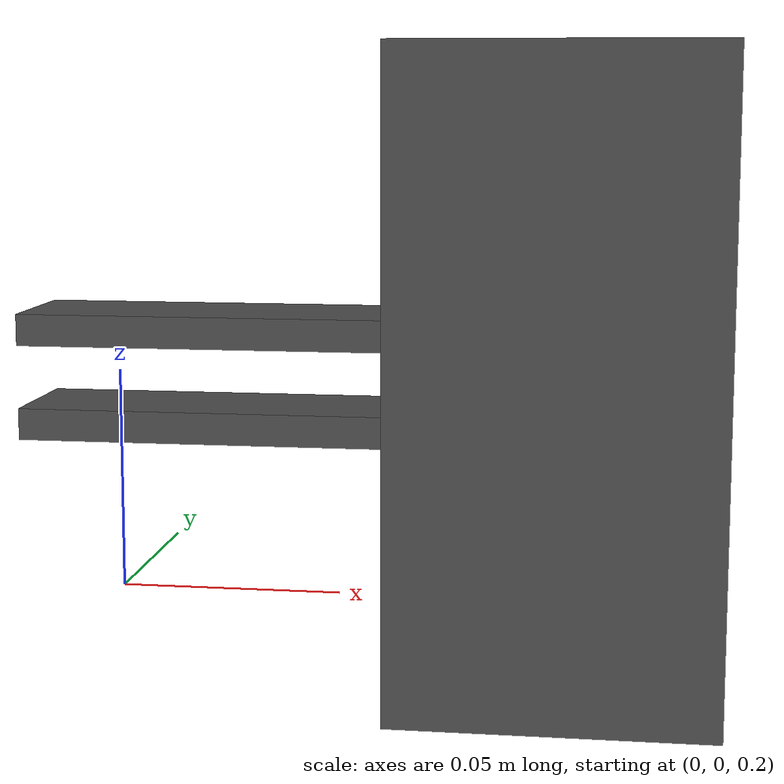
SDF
<?xml version="1.0"?>
<sdf version="1.7">
  <model name="simple_gripper">
    <pose>0.05 0.0 0.25 0 1.57 1.57</pose>
    <joint name="translate_joint" type="prismatic">
      <parent>world</parent>
      <child>body</child>
      <axis>
        <xyz expressed_in="__model__">-1 0 0</xyz>
      </axis>
      <drake:controller_gains p='10000.0' d='1.0' />
    </joint>
    <link name="body">
      <pose>0 -0.049133 0 0 0 0</pose>
      <inertial>
        <mass>0.988882</mass>
        <inertia>
          <ixx>0.162992</ixx>
          <ixy>0</ixy>
          <ixz>0</ixz>
          <iyy>0.162992</iyy>
          <iyz>0</iyz>
          <izz>0.164814</izz>
        </inertia>
      </inertial>
      <visual name="visual">
        <geometry>
          <box>
            <size>0.146 0.0725 0.049521</size>
          </box>
        </geometry>
        <material>
          <diffuse>0.3 0.3 0.3 0.9</diffuse>
        </material>
      </visual>
    </link>
    <link name="left_finger">
      <!-- Each finger is positioned along the x-axis such that at q=0 the pads
      of each finger barely touch each other. See notes at the top of this
      file. -->
      <pose>-0.0105 0.029 0 0 0 0</pose>
      <inertial>
        <mass>0.05</mass>
        <inertia>
          <ixx>0.16</ixx>
          <ixy>0</ixy>
          <ixz>0</ixz>
          <iyy>0.16</iyy>
          <iyz>0</iyz>
          <izz>0.16</izz>
        </inertia>
      </inertial>
      <visual name="visual">
        <geometry>
          <box>
            <size>0.007 0.081 0.028</size>
          </box>
        </geometry>
        <material>
          <diffuse>0.3 0.3 0.3 0.9</diffuse>
        </material>
      </visual>
      <collision name="collision">
        <geometry>
          <box>
            <size>0.007 0.081 0.028</size>
          </box>
        </geometry>
        <drake:proximity_properties>
          <drake:mu_dynamic>1.5</drake:mu_dynamic>
          <drake:mu_static>1.5</drake:mu_static>
          <drake:hydroelastic_modulus>1e6</drake:hydroelastic_modulus>
          <drake:hunt_crossley_dissipation>5</drake:hunt_crossley_dissipation>
          <drake:compliant_hydroelastic/>
        </drake:proximity_properties>
      </collision>
    </link>
    <link name="right_finger">
      <!-- Each finger is positioned along the x-axis such that at q=0 the pads
      of each finger barely touch each other. See notes at the top of this
      file. -->
      <pose>0.0105 0.029 0 0 0 0</pose>
      <inertial>
        <mass>0.05</mass>
        <inertia>
          <ixx>0.16</ixx>
          <ixy>0</ixy>
          <ixz>0</ixz>
          <iyy>0.16</iyy>
          <iyz>0</iyz>
          <izz>0.16</izz>
        </inertia>
      </inertial>
      <visual name="visual">
        <geometry>
          <box>
            <size>0.007 0.081 0.028</size>
          </box>
        </geometry>
        <material>
          <diffuse>0.3 0.3 0.3 0.9</diffuse>
        </material>
      </visual>
      <collision name="collision">
        <geometry>
          <box>
            <size>0.007 0.081 0.028</size>
          </box>
        </geometry>
        <drake:proximity_properties>
          <drake:mu_dynamic>1.5</drake:mu_dynamic>
          <drake:mu_static>1.5</drake:mu_static>
          <drake:hydroelastic_modulus>1e6</drake:hydroelastic_modulus>
          <drake:hunt_crossley_dissipation>5</drake:hunt_crossley_dissipation>
          <drake:compliant_hydroelastic/>
        </drake:proximity_properties>
      </collision>
    </link>
    <joint name="left_slider" type="prismatic">
      <parent>body</parent>
      <child>left_finger</child>
      <axis>
        <xyz>1 0 0</xyz>
      </axis>
      <drake:controller_gains p='10000.0' d='1.0' />
    </joint>
    <joint name="right_slider" type="prismatic">
      <parent>body</parent>
      <child>right_finger</child>
      <drake:mimic joint='left_slider' multiplier='-1' offset='0.0'/>
      <axis>
        <xyz>1 0 0</xyz>
        <!-- Drake attaches an actuator to all joints if the effort limit isn't
        explicitly set to zero. We do NOT want an actuator for this joint due
        to the existence of the mimic tag. -->
        <limit>
          <effort>0</effort>
        </limit>
      </axis>
    </joint>
  </model>
</sdf>
